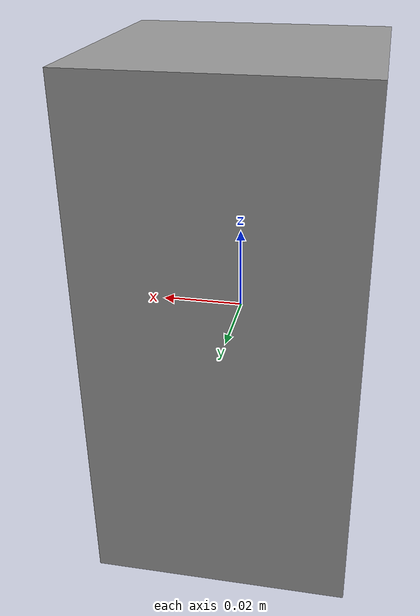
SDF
<?xml version='1.0'?>
<sdf version='1.6'>
  <model name='rock_box_petg'>
    <link name='link'>
      <inertial>
        <mass>0.596795</mass>
        <inertia>
          <ixx>0.00100268</ixx>
          <ixy>0</ixy>
          <ixz>0</ixz>
          <iyy>0.00100268</iyy>
          <iyz>0</iyz>
          <izz>0.00040107</izz>
        </inertia>
        <pose frame=''>0 0 0 0 -0 0</pose>
      </inertial>
      <self_collide>0</self_collide>
      <enable_wind>0</enable_wind>
      <kinematic>0</kinematic>
      <pose frame=''>0 0 0 0 -0 0</pose>
      <gravity>1</gravity>
      <visual name='visual'>
        <geometry>
          <box>
            <size>0.0635 0.0635 0.127</size>
          </box>
        </geometry>
        <material>
          <script>
            <name>Gazebo/Grey</name>
            <uri>file://media/materials/scripts/gazebo.material</uri>
          </script>
          <shader type='pixel'>
            <normal_map>__default__</normal_map>
          </shader>
          <ambient>0.3 0.3 0.3 1</ambient>
          <diffuse>0.7 0.7 0.7 1</diffuse>
          <specular>0.01 0.01 0.01 1</specular>
          <emissive>0 0 0 1</emissive>
        </material>
        <pose frame=''>0 0 0 0 -0 0</pose>
        <transparency>0</transparency>
        <cast_shadows>1</cast_shadows>
      </visual>
      <collision name='collision'>
        <laser_retro>0</laser_retro>
        <max_contacts>10</max_contacts>
        <pose frame=''>0 0 0 0 -0 0</pose>
        <geometry>
          <box>
            <size>0.0635 0.0635 0.127</size>
          </box>
        </geometry>
        <surface>
          <friction>
            <ode>
              <mu>0.6</mu>
              <mu2>0.6</mu2>
              <fdir1>1 0 0</fdir1>
              <slip1>0</slip1>
              <slip2>0</slip2>
            </ode>
            <torsional>
              <coefficient>1</coefficient>
              <patch_radius>0</patch_radius>
              <surface_radius>0</surface_radius>
              <use_patch_radius>1</use_patch_radius>
              <ode>
                <slip>0</slip>
              </ode>
            </torsional>
          </friction>
          <bounce>
            <restitution_coefficient>0.8</restitution_coefficient>
            <threshold>0</threshold>
          </bounce>
          <contact>
            <collide_without_contact>1</collide_without_contact>
            <collide_without_contact_bitmask>1</collide_without_contact_bitmask>
            <collide_bitmask>1</collide_bitmask>
            <ode>
              <soft_cfm>0</soft_cfm>
              <soft_erp>0.2</soft_erp>
              <kp>1e+13</kp>
              <kd>0</kd>
              <max_vel>100</max_vel>
              <min_depth>0</min_depth>
            </ode>
            <bullet>
              <split_impulse>1</split_impulse>
              <split_impulse_penetration_threshold>-0.01</split_impulse_penetration_threshold>
              <soft_cfm>0</soft_cfm>
              <soft_erp>0.2</soft_erp>
              <kp>1e+13</kp>
              <kd>0</kd>
            </bullet>
          </contact>
        </surface>
      </collision>
    </link>
    <static>0</static>
    <allow_auto_disable>1</allow_auto_disable>
  </model>
</sdf>
